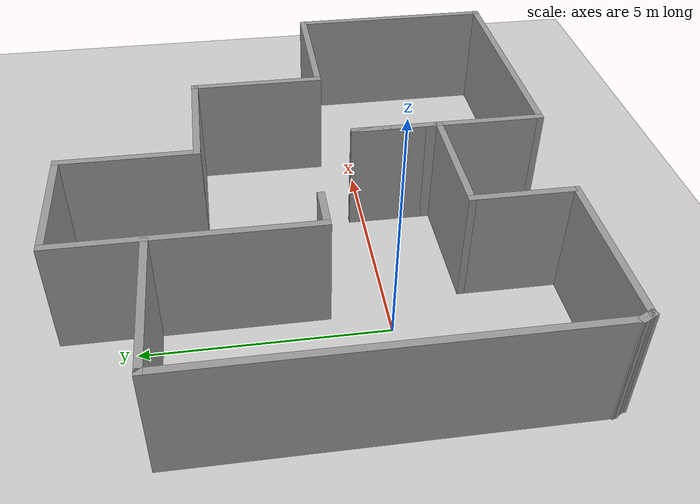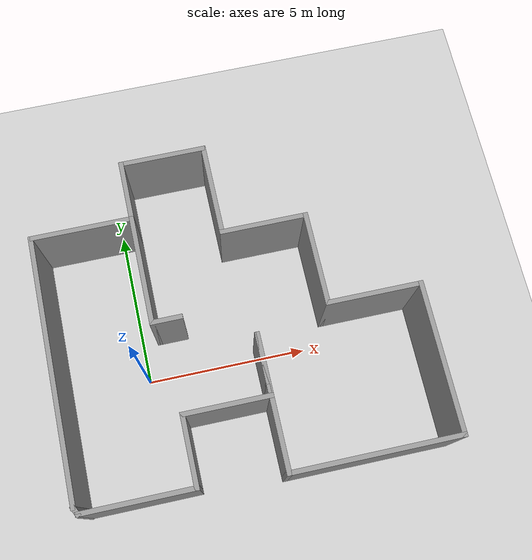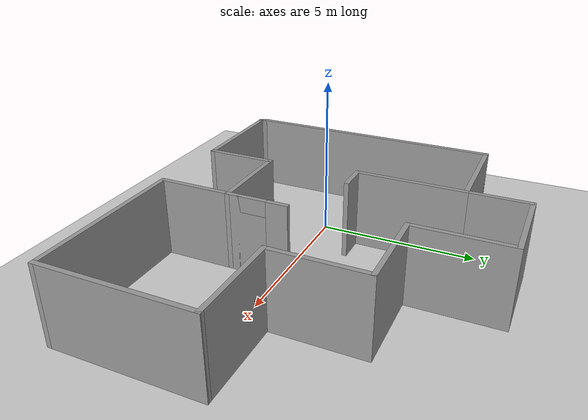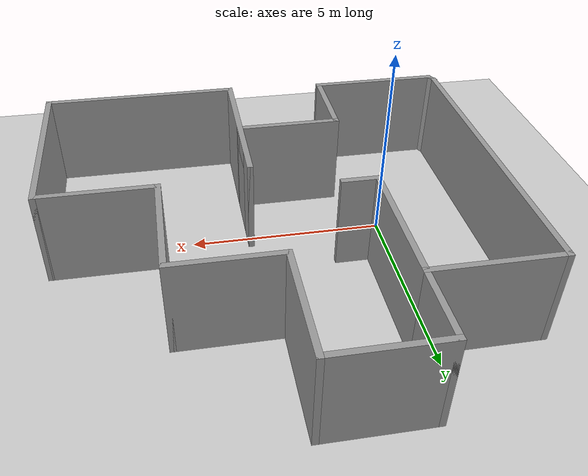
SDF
<sdf version="1.7">
 <world name="default">
  <light name="sun" type="directional">
   <pose>0 0 10 0 -0 0</pose>
   <diffuse>0.8 0.8 0.8 1</diffuse>
   <specular>0.2 0.2 0.2 1</specular>
   <attenuation>
    <range>1000</range>
    <constant>0.9</constant>
    <linear>0.01</linear>
    <quadratic>0.001</quadratic>
   </attenuation>
   <direction>-0.5 0.1 -0.9</direction>
   <spot><inner_angle>0</inner_angle><outer_angle>0</outer_angle><falloff>0</falloff></spot>
  </light>
  <model name="ground_plane">
   <static>1</static>
   <link name="link">
    <collision name="collision">
     <geometry><plane><normal>0 0 1</normal><size>100 100</size></plane></geometry>
     <surface>
      <contact><collide_bitmask>65535</collide_bitmask></contact>
      <friction><ode><mu>100</mu><mu2>50</mu2></ode></friction>
     </surface>
    </collision>
    <visual name="visual">
     <cast_shadows>0</cast_shadows>
     <geometry><plane><normal>0 0 1</normal><size>100 100</size></plane></geometry>
     <material>
      <script><uri>file://media/materials/scripts/gazebo.material</uri><name>Gazebo/Grey</name></script>
     </material>
    </visual>
   </link>
  </model>
  <gravity>0 0 -9.8</gravity>
  <magnetic_field>6e-06 2.3e-05 -4.2e-05</magnetic_field>
  <atmosphere type="adiabatic"/>
  <physics type="ode">
   <max_step_size>0.001</max_step_size>
   <real_time_factor>1</real_time_factor>
   <real_time_update_rate>1000</real_time_update_rate>
  </physics>
  <scene><ambient>0.4 0.4 0.4 1</ambient><background>0.7 0.7 0.7 1</background><shadows>1</shadows></scene>
  <audio><device>default</device></audio>
  <spherical_coordinates>
   <surface_model>EARTH_WGS84</surface_model>
   <latitude_deg>0</latitude_deg>
   <longitude_deg>0</longitude_deg>
   <elevation>0</elevation>
   <heading_deg>0</heading_deg>
  </spherical_coordinates>
  <model name="obstacles1">
   <pose>3.00219 1.29 0 0 -0 0</pose>
   <link name="Wall_0">
    <collision name="Wall_0_Collision">
     <geometry><box><size>8.25 0.15 2.5</size></box></geometry>
     <pose>0 0 1.25 0 -0 0</pose>
    </collision>
    <visual name="Wall_0_Visual">
     <pose>0 0 1.25 0 -0 0</pose>
     <geometry><box><size>8.25 0.15 2.5</size></box></geometry>
     <material>
      <script><uri>file://media/materials/scripts/gazebo.material</uri><name>Gazebo/Grey</name></script>
      <ambient>1 1 1 1</ambient>
     </material>
     <meta><layer>0</layer></meta>
    </visual>
    <pose>-5.56219 -0.75 0 0 -0 1.5708</pose>
   </link>
   <link name="Wall_1">
    <collision name="Wall_1_Collision">
     <geometry><box><size>3.25 0.15 2.5</size></box></geometry>
     <pose>0 0 1.25 0 -0 0</pose>
    </collision>
    <visual name="Wall_1_Visual">
     <pose>0 0 1.25 0 -0 0</pose>
     <geometry><box><size>3.25 0.15 2.5</size></box></geometry>
     <material>
      <script><uri>file://media/materials/scripts/gazebo.material</uri><name>Gazebo/Grey</name></script>
      <ambient>1 1 1 1</ambient>
     </material>
     <meta><layer>0</layer></meta>
    </visual>
    <pose>-4.01219 3.3 0 0 -0 0</pose>
   </link>
   <link name="Wall_10">
    <collision name="Wall_10_Collision">
     <geometry><box><size>4.25 0.15 2.5</size></box></geometry>
     <pose>0 0 1.25 0 -0 0</pose>
    </collision>
    <visual name="Wall_10_Visual">
     <pose>0 0 1.25 0 -0 0</pose>
     <geometry><box><size>4.25 0.15 2.5</size></box></geometry>
     <material>
      <script><uri>file://media/materials/scripts/gazebo.material</uri><name>Gazebo/Grey</name></script>
      <ambient>1 1 1 1</ambient>
     </material>
     <meta><layer>0</layer></meta>
    </visual>
    <pose>0.487811 -3.1 0 0 -0 1.5708</pose>
   </link>
   <link name="Wall_11">
    <pose>0.487811 -1.975 0 0 -0 -1.5708</pose>
    <visual name="Wall_11_Visual_0">
     <pose>-0.656996 0 1.25 0 -0 0</pose>
     <geometry><box><size>0.686009 0.15 2.5</size></box></geometry>
     <material>
      <script><uri>file://media/materials/scripts/gazebo.material</uri><name>Gazebo/Grey</name></script>
      <ambient>1 1 1 1</ambient>
     </material>
     <meta><layer>0</layer></meta>
    </visual>
    <collision name="Wall_11_Collision_0">
     <geometry><box><size>0.686009 0.15 2.5</size></box></geometry>
     <pose>-0.656996 0 1.25 0 -0 0</pose>
    </collision>
    <visual name="Wall_11_Visual_1">
     <pose>0.793004 0 1.25 0 -0 0</pose>
     <geometry><box><size>0.413991 0.15 2.5</size></box></geometry>
     <material>
      <script><uri>file://media/materials/scripts/gazebo.material</uri><name>Gazebo/Grey</name></script>
      <ambient>1 1 1 1</ambient>
     </material>
     <meta><layer>0</layer></meta>
    </visual>
    <collision name="Wall_11_Collision_1">
     <geometry><box><size>0.413991 0.15 2.5</size></box></geometry>
     <pose>0.793004 0 1.25 0 -0 0</pose>
    </collision>
    <visual name="Wall_11_Visual_2">
     <pose>0.136009 0 2.25 0 -0 0</pose>
     <geometry><box><size>0.9 0.15 0.5</size></box></geometry>
     <material>
      <script><uri>file://media/materials/scripts/gazebo.material</uri><name>Gazebo/Grey</name></script>
      <ambient>1 1 1 1</ambient>
     </material>
     <meta><layer>0</layer></meta>
    </visual>
    <collision name="Wall_11_Collision_2">
     <geometry><box><size>0.9 0.15 0.5</size></box></geometry>
     <pose>0.136009 0 2.25 0 -0 0</pose>
    </collision>
   </link>
   <link name="Wall_12">
    <collision name="Wall_12_Collision">
     <geometry><box><size>2.75 0.15 2.5</size></box></geometry>
     <pose>0 0 1.25 0 -0 0</pose>
    </collision>
    <visual name="Wall_12_Visual">
     <pose>0 0 1.25 0 -0 0</pose>
     <geometry><box><size>2.75 0.15 2.5</size></box></geometry>
     <material>
      <script><uri>file://media/materials/scripts/gazebo.material</uri><name>Gazebo/Grey</name></script>
      <ambient>1 1 1 1</ambient>
     </material>
     <meta><layer>0</layer></meta>
    </visual>
    <pose>-0.812189 -2.9 0 0 -0 3.14159</pose>
   </link>
   <link name="Wall_13">
    <collision name="Wall_13_Collision">
     <geometry><box><size>2.25 0.15 2.5</size></box></geometry>
     <pose>0 0 1.25 0 -0 0</pose>
    </collision>
    <visual name="Wall_13_Visual">
     <pose>0 0 1.25 0 -0 0</pose>
     <geometry><box><size>2.25 0.15 2.5</size></box></geometry>
     <material>
      <script><uri>file://media/materials/scripts/gazebo.material</uri><name>Gazebo/Grey</name></script>
      <ambient>1 1 1 1</ambient>
     </material>
     <meta><layer>0</layer></meta>
    </visual>
    <pose>-2.11219 -3.95 0 0 -0 -1.5708</pose>
   </link>
   <link name="Wall_14">
    <collision name="Wall_14_Collision">
     <geometry><box><size>3.5 0.15 2.5</size></box></geometry>
     <pose>0 0 1.25 0 -0 0</pose>
    </collision>
    <visual name="Wall_14_Visual">
     <pose>0 0 1.25 0 -0 0</pose>
     <geometry><box><size>3.5 0.15 2.5</size></box></geometry>
     <material>
      <script><uri>file://media/materials/scripts/gazebo.material</uri><name>Gazebo/Grey</name></script>
      <ambient>1 1 1 1</ambient>
     </material>
     <meta><layer>0</layer></meta>
    </visual>
    <pose>-3.78719 -5 0 0 -0 3.14159</pose>
   </link>
   <link name="Wall_15">
    <collision name="Wall_15_Collision">
     <geometry><box><size>0.373607 0.15 2.5</size></box></geometry>
     <pose>0 0 1.25 0 -0 0</pose>
    </collision>
    <visual name="Wall_15_Visual">
     <pose>0 0 1.25 0 -0 0</pose>
     <geometry><box><size>0.373607 0.15 2.5</size></box></geometry>
     <material>
      <script><uri>file://media/materials/scripts/gazebo.material</uri><name>Gazebo/Grey</name></script>
      <ambient>1 1 1 1</ambient>
     </material>
     <meta><layer>0</layer></meta>
    </visual>
    <pose>-5.51219 -4.9 0 0 -0 2.03444</pose>
   </link>
   <link name="Wall_17">
    <collision name="Wall_17_Collision">
     <geometry><box><size>3.5 0.15 2.5</size></box></geometry>
     <pose>0 0 1.25 0 -0 0</pose>
    </collision>
    <visual name="Wall_17_Visual">
     <pose>0 0 1.25 0 -0 0</pose>
     <geometry><box><size>3.5 0.15 2.5</size></box></geometry>
     <material>
      <script><uri>file://media/materials/scripts/gazebo.material</uri><name>Gazebo/Grey</name></script>
      <ambient>1 1 1 1</ambient>
     </material>
     <meta><layer>0</layer></meta>
    </visual>
    <pose>-2.46219 1.625 0 0 -0 -1.5708</pose>
   </link>
   <link name="Wall_18">
    <collision name="Wall_18_Collision">
     <geometry><box><size>1 0.15 2.5</size></box></geometry>
     <pose>0 0 1.25 0 -0 0</pose>
    </collision>
    <visual name="Wall_18_Visual">
     <pose>0 0 1.25 0 -0 0</pose>
     <geometry><box><size>1 0.15 2.5</size></box></geometry>
     <material>
      <script><uri>file://media/materials/scripts/gazebo.material</uri><name>Gazebo/Grey</name></script>
      <ambient>1 1 1 1</ambient>
     </material>
     <meta><layer>0</layer></meta>
    </visual>
    <pose>-2.03719 -0.05 0 0 -0 0</pose>
   </link>
   <link name="Wall_2">
    <collision name="Wall_2_Collision">
     <geometry><box><size>2 0.15 2.5</size></box></geometry>
     <pose>0 0 1.25 0 -0 0</pose>
    </collision>
    <visual name="Wall_2_Visual">
     <pose>0 0 1.25 0 -0 0</pose>
     <geometry><box><size>2 0.15 2.5</size></box></geometry>
     <material>
      <script><uri>file://media/materials/scripts/gazebo.material</uri><name>Gazebo/Grey</name></script>
      <ambient>1 1 1 1</ambient>
     </material>
     <meta><layer>0</layer></meta>
    </visual>
    <pose>-2.46219 4.225 0 0 -0 1.5708</pose>
   </link>
   <link name="Wall_3">
    <collision name="Wall_3_Collision">
     <geometry><box><size>2.75 0.15 2.5</size></box></geometry>
     <pose>0 0 1.25 0 -0 0</pose>
    </collision>
    <visual name="Wall_3_Visual">
     <pose>0 0 1.25 0 -0 0</pose>
     <geometry><box><size>2.75 0.15 2.5</size></box></geometry>
     <material>
      <script><uri>file://media/materials/scripts/gazebo.material</uri><name>Gazebo/Grey</name></script>
      <ambient>1 1 1 1</ambient>
     </material>
     <meta><layer>0</layer></meta>
    </visual>
    <pose>-1.16219 5.15 0 0 -0 0</pose>
   </link>
   <link name="Wall_4">
    <collision name="Wall_4_Collision">
     <geometry><box><size>3 0.15 2.5</size></box></geometry>
     <pose>0 0 1.25 0 -0 0</pose>
    </collision>
    <visual name="Wall_4_Visual">
     <pose>0 0 1.25 0 -0 0</pose>
     <geometry><box><size>3 0.15 2.5</size></box></geometry>
     <material>
      <script><uri>file://media/materials/scripts/gazebo.material</uri><name>Gazebo/Grey</name></script>
      <ambient>1 1 1 1</ambient>
     </material>
     <meta><layer>0</layer></meta>
    </visual>
    <pose>0.137811 3.725 0 0 -0 -1.5708</pose>
   </link>
   <link name="Wall_5">
    <collision name="Wall_5_Collision">
     <geometry><box><size>2.75 0.15 2.5</size></box></geometry>
     <pose>0 0 1.25 0 -0 0</pose>
    </collision>
    <visual name="Wall_5_Visual">
     <pose>0 0 1.25 0 -0 0</pose>
     <geometry><box><size>2.75 0.15 2.5</size></box></geometry>
     <material>
      <script><uri>file://media/materials/scripts/gazebo.material</uri><name>Gazebo/Grey</name></script>
      <ambient>1 1 1 1</ambient>
     </material>
     <meta><layer>0</layer></meta>
    </visual>
    <pose>1.43781 2.3 0 0 -0 0</pose>
   </link>
   <link name="Wall_6">
    <collision name="Wall_6_Collision">
     <geometry><box><size>3 0.15 2.5</size></box></geometry>
     <pose>0 0 1.25 0 -0 0</pose>
    </collision>
    <visual name="Wall_6_Visual">
     <pose>0 0 1.25 0 -0 0</pose>
     <geometry><box><size>3 0.15 2.5</size></box></geometry>
     <material>
      <script><uri>file://media/materials/scripts/gazebo.material</uri><name>Gazebo/Grey</name></script>
      <ambient>1 1 1 1</ambient>
     </material>
     <meta><layer>0</layer></meta>
    </visual>
    <pose>2.73781 0.875 0 0 -0 -1.5708</pose>
   </link>
   <link name="Wall_7">
    <collision name="Wall_7_Collision">
     <geometry><box><size>3 0.15 2.5</size></box></geometry>
     <pose>0 0 1.25 0 -0 0</pose>
    </collision>
    <visual name="Wall_7_Visual">
     <pose>0 0 1.25 0 -0 0</pose>
     <geometry><box><size>3 0.15 2.5</size></box></geometry>
     <material>
      <script><uri>file://media/materials/scripts/gazebo.material</uri><name>Gazebo/Grey</name></script>
      <ambient>1 1 1 1</ambient>
     </material>
     <meta><layer>0</layer></meta>
    </visual>
    <pose>4.16281 -0.55 0 0 -0 0</pose>
   </link>
   <link name="Wall_8">
    <collision name="Wall_8_Collision">
     <geometry><box><size>4.75 0.15 2.5</size></box></geometry>
     <pose>0 0 1.25 0 -0 0</pose>
    </collision>
    <visual name="Wall_8_Visual">
     <pose>0 0 1.25 0 -0 0</pose>
     <geometry><box><size>4.75 0.15 2.5</size></box></geometry>
     <material>
      <script><uri>file://media/materials/scripts/gazebo.material</uri><name>Gazebo/Grey</name></script>
      <ambient>1 1 1 1</ambient>
     </material>
     <meta><layer>0</layer></meta>
    </visual>
    <pose>5.58781 -2.85 0 0 -0 -1.5708</pose>
   </link>
   <link name="Wall_9">
    <collision name="Wall_9_Collision">
     <geometry><box><size>5.25 0.15 2.5</size></box></geometry>
     <pose>0 0 1.25 0 -0 0</pose>
    </collision>
    <visual name="Wall_9_Visual">
     <pose>0 0 1.25 0 -0 0</pose>
     <geometry><box><size>5.25 0.15 2.5</size></box></geometry>
     <material>
      <script><uri>file://media/materials/scripts/gazebo.material</uri><name>Gazebo/Grey</name></script>
      <ambient>1 1 1 1</ambient>
     </material>
     <meta><layer>0</layer></meta>
    </visual>
    <pose>3.03781 -5.15 0 0 -0 3.14159</pose>
   </link>
   <static>1</static>
  </model>
 </world>
</sdf>
